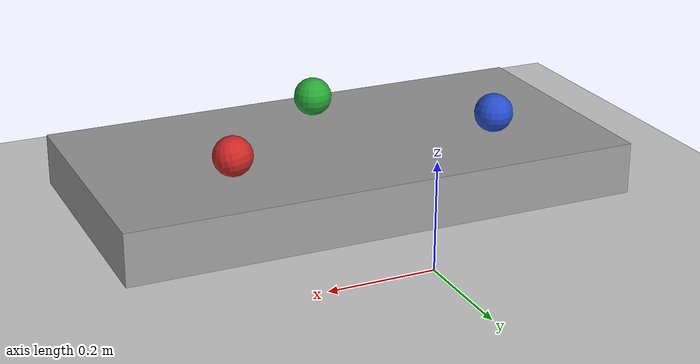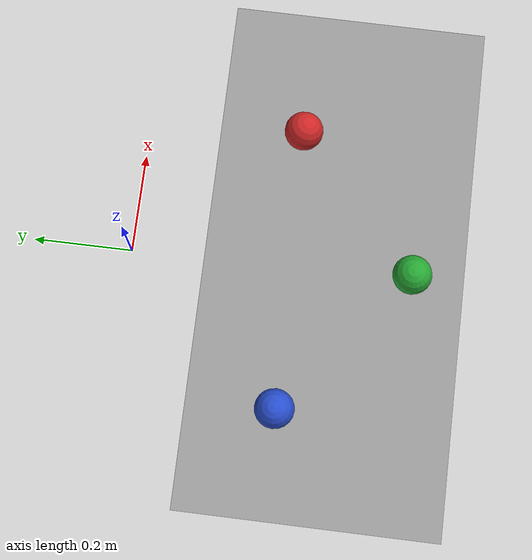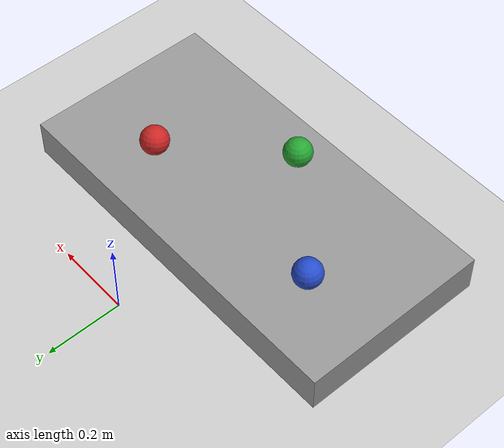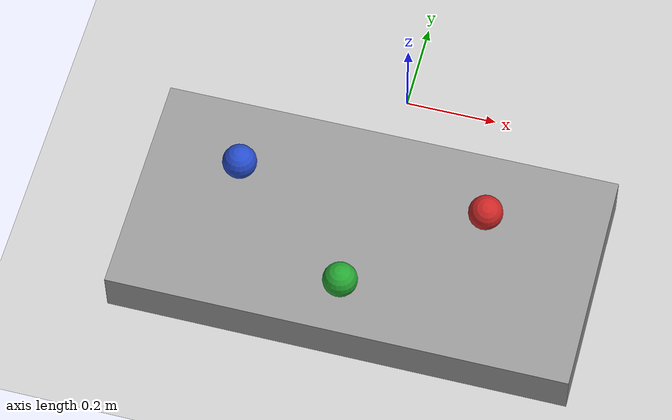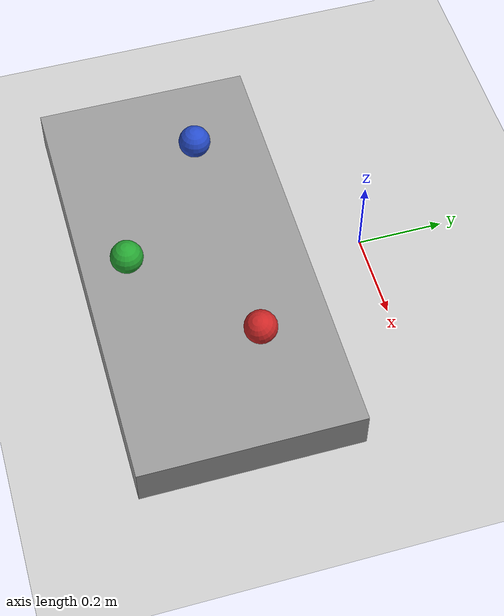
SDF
<sdf version="1.7">
 <world name="default">
  <light name="sun" type="directional">
   <pose>0 0 10 0 -0 0</pose>
   <diffuse>0.8 0.8 0.8 1</diffuse>
   <specular>0.2 0.2 0.2 1</specular>
   <attenuation>
    <range>1000</range>
    <constant>0.9</constant>
    <linear>0.01</linear>
    <quadratic>0.001</quadratic>
   </attenuation>
   <direction>-0.5 0.1 -0.9</direction>
   <spot><inner_angle>0</inner_angle><outer_angle>0</outer_angle><falloff>0</falloff></spot>
  </light>
  <model name="ground_plane">
   <static>1</static>
   <link name="link">
    <collision name="collision">
     <geometry><plane><normal>0 0 1</normal><size>100 100</size></plane></geometry>
     <surface><friction><ode><mu>100</mu><mu2>50</mu2></ode></friction></surface>
    </collision>
    <visual name="visual">
     <cast_shadows>0</cast_shadows>
     <geometry><plane><normal>0 0 1</normal><size>100 100</size></plane></geometry>
     <material>
      <script><uri>file://media/materials/scripts/gazebo.material</uri><name>Gazebo/Grey</name></script>
     </material>
    </visual>
   </link>
  </model>
  <gravity>0 0 -9.8</gravity>
  <magnetic_field>6e-06 2.3e-05 -4.2e-05</magnetic_field>
  <atmosphere type="adiabatic"/>
  <physics type="ode">
   <max_step_size>0.001</max_step_size>
   <real_time_factor>1</real_time_factor>
   <real_time_update_rate>1000</real_time_update_rate>
  </physics>
  <scene><ambient>0.4 0.4 0.4 1</ambient><background>0.7 0.7 0.7 1</background><shadows>1</shadows></scene>
  <audio><device>default</device></audio>
  <spherical_coordinates>
   <surface_model>EARTH_WGS84</surface_model>
   <latitude_deg>0</latitude_deg>
   <longitude_deg>0</longitude_deg>
   <elevation>0</elevation>
   <heading_deg>0</heading_deg>
  </spherical_coordinates>
  <model name="op_table">
   <link name="link">
    <inertial>
     <mass>10</mass>
     <inertia>
      <ixx>0.216667</ixx>
      <ixy>0</ixy>
      <ixz>0</ixz>
      <iyy>0.841667</iyy>
      <iyz>0</iyz>
      <izz>1.04167</izz>
     </inertia>
    </inertial>
    <pose>0 0 0.2 0 -0 0</pose>
    <visual name="visual">
     <geometry><box><size>1 0.5 0.1</size></box></geometry>
     <material>
      <script><name>Gazebo/Grey</name><uri>file://media/materials/scripts/gazebo.material</uri></script>
      <shader type="pixel"><normal_map>__default__</normal_map></shader>
      <ambient>0.965 0.961 0.957 1</ambient>
      <diffuse>0.7 0.7 0.7 1</diffuse>
      <specular>0.01 0.01 0.01 1</specular>
      <emissive>0 0 0 1</emissive>
     </material>
    </visual>
    <collision name="collision">
     <geometry><box><size>1 0.5 0.1</size></box></geometry>
     <surface>
      <friction>
       <ode><mu>1</mu><mu2>1</mu2><fdir1>0 0 0</fdir1><slip1>0</slip1><slip2>0</slip2></ode>
       <torsional>
        <coefficient>1</coefficient>
        <patch_radius>0</patch_radius>
        <surface_radius>0</surface_radius>
        <use_patch_radius>1</use_patch_radius>
        <ode><slip>0</slip></ode>
       </torsional>
      </friction>
      <bounce><restitution_coefficient>0</restitution_coefficient><threshold>1e+06</threshold></bounce>
      <contact>
       <collide_without_contact>0</collide_without_contact>
       <collide_without_contact_bitmask>1</collide_without_contact_bitmask>
       <collide_bitmask>1</collide_bitmask>
       <ode>
        <soft_cfm>0</soft_cfm>
        <soft_erp>0.2</soft_erp>
        <kp>1e+13</kp>
        <kd>1</kd>
        <max_vel>0.01</max_vel>
        <min_depth>0</min_depth>
       </ode>
       <bullet>
        <split_impulse>1</split_impulse>
        <split_impulse_penetration_threshold>-0.01</split_impulse_penetration_threshold>
        <soft_cfm>0</soft_cfm>
        <soft_erp>0.2</soft_erp>
        <kp>1e+13</kp>
        <kd>1</kd>
       </bullet>
      </contact>
     </surface>
    </collision>
   </link>
   <static>0</static>
   <pose>0.003885 -0.401809 -0.15 0 -0 0.000236</pose>
  </model>
  <model name="cricket_ball">
   <link name="link">
    <pose>0 0 0.0375 0 -0 0</pose>
    <inertial>
     <mass>0.1467</mass>
     <inertia>
      <ixx>8.25187e-05</ixx>
      <ixy>0</ixy>
      <ixz>0</ixz>
      <iyy>8.25187e-05</iyy>
      <iyz>0</iyz>
      <izz>8.25187e-05</izz>
     </inertia>
    </inertial>
    <collision name="collision">
     <geometry><sphere><radius>0.0375</radius></sphere></geometry>
     <surface>
      <contact>
       <poissons_ratio>0.347</poissons_ratio>
       <elastic_modulus>8.8e+09</elastic_modulus>
       <ode><kp>100000</kp><kd>100</kd><max_vel>100</max_vel><min_depth>0.001</min_depth></ode>
      </contact>
      <friction>
       <torsional>
        <coefficient>1</coefficient>
        <use_patch_radius>0</use_patch_radius>
        <surface_radius>0.01</surface_radius>
       </torsional>
      </friction>
     </surface>
    </collision>
    <visual name="visual">
     <geometry><sphere><radius>0.0375</radius></sphere></geometry>
     <material>
      <script><uri>file://media/materials/scripts/gazebo.material</uri><name>Gazebo/Red</name></script>
     </material>
    </visual>
    <velocity_decay><linear>0</linear><angular>0.005</angular></velocity_decay>
   </link>
   <pose>0.241553 -0.30467 0.101601 0.24605 0.163643 0.012842</pose>
  </model>
  <model name="cricket_ball_blue">
   <link name="link">
    <pose>0 0 0.0375 0 -0 0</pose>
    <inertial>
     <mass>0.1467</mass>
     <inertia>
      <ixx>8.25187e-05</ixx>
      <ixy>0</ixy>
      <ixz>0</ixz>
      <iyy>8.25187e-05</iyy>
      <iyz>0</iyz>
      <izz>8.25187e-05</izz>
     </inertia>
    </inertial>
    <collision name="collision">
     <geometry><sphere><radius>0.0375</radius></sphere></geometry>
     <surface>
      <contact>
       <poissons_ratio>0.347</poissons_ratio>
       <elastic_modulus>8.8e+09</elastic_modulus>
       <ode><kp>100000</kp><kd>100</kd><max_vel>100</max_vel><min_depth>0.001</min_depth></ode>
      </contact>
      <friction>
       <torsional>
        <coefficient>1</coefficient>
        <use_patch_radius>0</use_patch_radius>
        <surface_radius>0.01</surface_radius>
       </torsional>
      </friction>
     </surface>
    </collision>
    <visual name="visual">
     <geometry><sphere><radius>0.0375</radius></sphere></geometry>
     <material>
      <script><uri>file://media/materials/scripts/gazebo.material</uri><name>Gazebo/Blue</name></script>
     </material>
    </visual>
    <velocity_decay><linear>0</linear><angular>0.005</angular></velocity_decay>
   </link>
   <pose>-0.291598 -0.321694 0.100022 -0.044069 0.004709 0.000164</pose>
  </model>
  <model name="cricket_ball_green">
   <link name="link">
    <pose>0 0 0.0375 0 -0 0</pose>
    <inertial>
     <mass>0.1467</mass>
     <inertia>
      <ixx>8.25187e-05</ixx>
      <ixy>0</ixy>
      <ixz>0</ixz>
      <iyy>8.25187e-05</iyy>
      <iyz>0</iyz>
      <izz>8.25187e-05</izz>
     </inertia>
    </inertial>
    <collision name="collision">
     <geometry><sphere><radius>0.0375</radius></sphere></geometry>
     <surface>
      <contact>
       <poissons_ratio>0.347</poissons_ratio>
       <elastic_modulus>8.8e+09</elastic_modulus>
       <ode><kp>100000</kp><kd>100</kd><max_vel>100</max_vel><min_depth>0.001</min_depth></ode>
      </contact>
      <friction>
       <torsional>
        <coefficient>1</coefficient>
        <use_patch_radius>0</use_patch_radius>
        <surface_radius>0.01</surface_radius>
       </torsional>
      </friction>
     </surface>
    </collision>
    <visual name="visual">
     <geometry><sphere><radius>0.0375</radius></sphere></geometry>
     <material>
      <script><uri>file://media/materials/scripts/gazebo.material</uri><name>Gazebo/Green</name></script>
     </material>
    </visual>
    <velocity_decay><linear>0</linear><angular>0.005</angular></velocity_decay>
   </link>
   <pose>-0.010347 -0.549092 0.099992 -0.015312 0.009251 -3e-06</pose>
  </model>
 </world>
</sdf>
